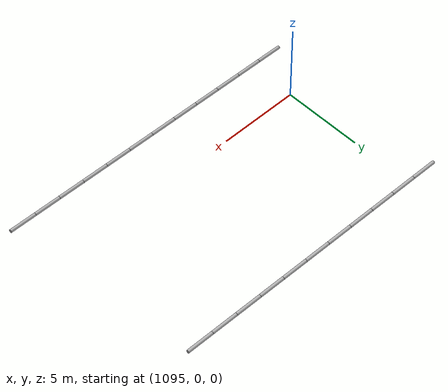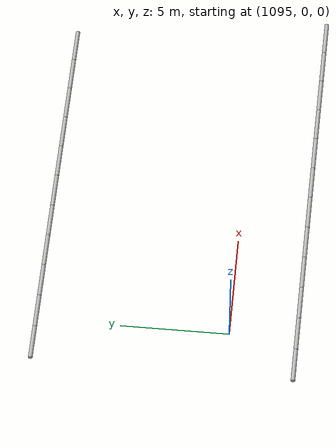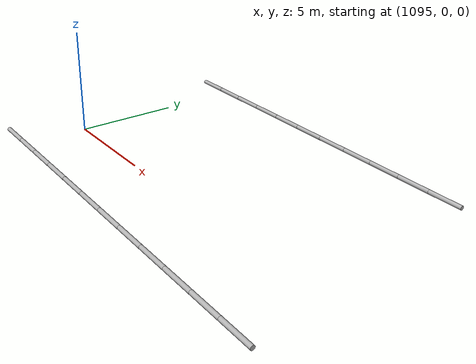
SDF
<sdf version="1.6">
 <model name="line_model">
  <static>true</static>
  <link name="cylinder_(1092.8420412028067, -3.0743504832168647)_(1094.4626807652935, -3.0887509597818683)">
   <pose>1093.6523609840501 -3.0815507214993665 0.05 0 1.5707963267948966 -0.008885441228680874</pose>
   <visual name="visual">
    <geometry><cylinder><radius>0.1</radius><length>1.6207035402017762</length></cylinder></geometry>
   </visual>
   <collision name="collision">
    <geometry><cylinder><radius>0.1</radius><length>1.6207035402017762</length></cylinder></geometry>
   </collision>
  </link>
  <link name="cylinder_(1094.4626807652935, -3.0887509597818683)_(1096.0874518585697, -3.103666067868259)">
   <pose>1095.2750663119316 -3.0962085138250637 0.05 0 1.5707963267948966 -0.00917956332944326</pose>
   <visual name="visual">
    <geometry><cylinder><radius>0.1</radius><length>1.624839550846529</length></cylinder></geometry>
   </visual>
   <collision name="collision">
    <geometry><cylinder><radius>0.1</radius><length>1.624839550846529</length></cylinder></geometry>
   </collision>
  </link>
  <link name="cylinder_(1096.0874518585697, -3.103666067868259)_(1097.7164044885553, -3.1190945265712458)">
   <pose>1096.9019281735625 -3.1113802972197524 0.05 0 1.5707963267948966 -0.009471114810184589</pose>
   <visual name="visual">
    <geometry><cylinder><radius>0.1</radius><length>1.6290256928836515</length></cylinder></geometry>
   </visual>
   <collision name="collision">
    <geometry><cylinder><radius>0.1</radius><length>1.6290256928836515</length></cylinder></geometry>
   </collision>
  </link>
  <link name="cylinder_(1097.7164044885553, -3.1190945265712458)_(1099.3495886578717, -3.1350350548857193)">
   <pose>1098.5329965732135 -3.1270647907284825 0.05 0 1.5707963267948966 -0.009760088573836815</pose>
   <visual name="visual">
    <geometry><cylinder><radius>0.1</radius><length>1.6332619604179968</length></cylinder></geometry>
   </visual>
   <collision name="collision">
    <geometry><cylinder><radius>0.1</radius><length>1.6332619604179968</length></cylinder></geometry>
   </collision>
  </link>
  <link name="cylinder_(1099.3495886578717, -3.1350350548857193)_(1100.987054365873, -3.1514863717007264)">
   <pose>1100.1683215118724 -3.143260713293223 0.05 0 1.5707963267948966 -0.01004647806932424</pose>
   <visual name="visual">
    <geometry><cylinder><radius>0.1</radius><length>1.637548347593278</length></cylinder></geometry>
   </visual>
   <collision name="collision">
    <geometry><cylinder><radius>0.1</radius><length>1.637548347593278</length></cylinder></geometry>
   </collision>
  </link>
  <link name="cylinder_(1100.987054365873, -3.1514863717007264)_(1102.628851608677, -3.1684471957941187)">
   <pose>1101.807952987275 -3.1599667837474223 0.05 0 1.5707963267948966 -0.010330277286525406</pose>
   <visual name="visual">
    <geometry><cylinder><radius>0.1</radius><length>1.641884848590948</length></cylinder></geometry>
   </visual>
   <collision name="collision">
    <geometry><cylinder><radius>0.1</radius><length>1.641884848590948</length></cylinder></geometry>
   </collision>
  </link>
  <link name="cylinder_(1102.628851608677, -3.1684471957941187)_(1104.2750303791952, -3.1859162458274097)">
   <pose>1103.4519409939362 -3.177181720810764 0.05 0 1.5707963267948966 -0.01061148075106893</pose>
   <visual name="visual">
    <geometry><cylinder><radius>0.1</radius><length>1.6462714576320172</length></cylinder></geometry>
   </visual>
   <collision name="collision">
    <geometry><cylinder><radius>0.1</radius><length>1.6462714576320172</length></cylinder></geometry>
   </collision>
  </link>
  <link name="cylinder_(1104.2750303791952, -3.1859162458274097)_(1105.9256406671684, -3.203892240340794)">
   <pose>1105.100335523182 -3.194904243084102 0.05 0 1.5707963267948966 -0.010890083518921807</pose>
   <visual name="visual">
    <geometry><cylinder><radius>0.1</radius><length>1.6507081689813585</length></cylinder></geometry>
   </visual>
   <collision name="collision">
    <geometry><cylinder><radius>0.1</radius><length>1.6507081689813585</length></cylinder></geometry>
   </collision>
  </link>
  <link name="cylinder_(1105.9256406671684, -3.203892240340794)_(1107.5807324591988, -3.2223738977483656)">
   <pose>1106.7531865631836 -3.21313306904458 0.05 0 1.5707963267948966 -0.011166081170882816</pose>
   <visual name="visual">
    <geometry><cylinder><radius>0.1</radius><length>1.6551949769458598</length></cylinder></geometry>
   </visual>
   <collision name="collision">
    <geometry><cylinder><radius>0.1</radius><length>1.6551949769458598</length></cylinder></geometry>
   </collision>
  </link>
  <link name="cylinder_(1107.5807324591988, -3.2223738977483656)_(1109.240355738785, -3.241359936333529)">
   <pose>1108.410544098992 -3.2318669170409473 0.05 0 1.5707963267948966 -0.011439469806888475</pose>
   <visual name="visual">
    <geometry><cylinder><radius>0.1</radius><length>1.6597318758780173</length></cylinder></geometry>
   </visual>
   <collision name="collision">
    <geometry><cylinder><radius>0.1</radius><length>1.6597318758780173</length></cylinder></geometry>
   </collision>
  </link>
  <link name="cylinder_(1109.240355738785, -3.241359936333529)_(1110.9045604863584, -3.2608490742445895)">
   <pose>1110.0724581125717 -3.2511045052890593 0.05 0 1.5707963267948966 -0.011710246040177771</pose>
   <visual name="visual">
    <geometry><cylinder><radius>0.1</radius><length>1.6643188601774697</length></cylinder></geometry>
   </visual>
   <collision name="collision">
    <geometry><cylinder><radius>0.1</radius><length>1.6643188601774697</length></cylinder></geometry>
   </collision>
  </link>
  <link name="cylinder_(1110.9045604863584, -3.2608490742445895)_(1112.5733966793184, -3.280840029490533)">
   <pose>1111.7389785828384 -3.2708445518675613 0.05 0 1.5707963267948966 -0.011978406991342491</pose>
   <visual name="visual">
    <geometry><cylinder><radius>0.1</radius><length>1.6689559242906973</length></cylinder></geometry>
   </visual>
   <collision name="collision">
    <geometry><cylinder><radius>0.1</radius><length>1.6689559242906973</length></cylinder></geometry>
   </collision>
  </link>
  <link name="cylinder_(1092.9468894220772, 8.925191460162301)_(1094.5710737027798, 8.91075948736151)">
   <pose>1093.7589815624285 8.917975473761906 0.05 0 1.5707963267948966 -0.008885440626266743</pose>
   <visual name="visual">
    <geometry><cylinder><radius>0.1</radius><length>1.6242483983431608</length></cylinder></geometry>
   </visual>
   <collision name="collision">
    <geometry><cylinder><radius>0.1</radius><length>1.6242483983431608</length></cylinder></geometry>
   </collision>
  </link>
  <link name="cylinder_(1094.5710737027798, 8.91075948736151)_(1096.1993587036995, 8.895812123203763)">
   <pose>1095.3852162032397 8.903285805282636 0.05 0 1.5707963267948966 -0.009179562732278376</pose>
   <visual name="visual">
    <geometry><cylinder><radius>0.1</radius><length>1.6283536065349673</length></cylinder></geometry>
   </visual>
   <collision name="collision">
    <geometry><cylinder><radius>0.1</radius><length>1.6283536065349673</length></cylinder></geometry>
   </collision>
  </link>
  <link name="cylinder_(1096.1993587036995, 8.895812123203763)_(1097.8317943422444, 8.880350676506504)">
   <pose>1097.015576522972 8.888081399855134 0.05 0 1.5707963267948966 -0.009471114218437953</pose>
   <visual name="visual">
    <geometry><cylinder><radius>0.1</radius><length>1.6325088576560003</length></cylinder></geometry>
   </visual>
   <collision name="collision">
    <geometry><cylinder><radius>0.1</radius><length>1.6325088576560003</length></cylinder></geometry>
   </collision>
  </link>
  <link name="cylinder_(1097.8317943422444, 8.880350676506504)_(1099.4684305391197, 8.864376455986864)">
   <pose>1098.650112440682 8.872363566246683 0.05 0 1.5707963267948966 -0.009760087987666923</pose>
   <visual name="visual">
    <geometry><cylinder><radius>0.1</radius><length>1.6367141523930517</length></cylinder></geometry>
   </visual>
   <collision name="collision">
    <geometry><cylinder><radius>0.1</radius><length>1.6367141523930517</length></cylinder></geometry>
   </collision>
  </link>
  <link name="cylinder_(1099.4684305391197, 8.864376455986864)_(1101.1093172182996, 8.847890770256125)">
   <pose>1100.2888738787096 8.856133613121495 0.05 0 1.5707963267948966 -0.010046477488884152</pose>
   <visual name="visual">
    <geometry><cylinder><radius>0.1</radius><length>1.6409694914116817</length></cylinder></geometry>
   </visual>
   <collision name="collision">
    <geometry><cylinder><radius>0.1</radius><length>1.6409694914116817</length></cylinder></geometry>
   </collision>
  </link>
  <link name="cylinder_(1101.1093172182996, 8.847890770256125)_(1102.754504306995, 8.830894927814386)">
   <pose>1101.9319107626472 8.839392849035256 0.05 0 1.5707963267948966 -0.010330276711959421</pose>
   <visual name="visual">
    <geometry><cylinder><radius>0.1</radius><length>1.6452748753537316</length></cylinder></geometry>
   </visual>
   <collision name="collision">
    <geometry><cylinder><radius>0.1</radius><length>1.6452748753537316</length></cylinder></geometry>
   </collision>
  </link>
  <link name="cylinder_(1102.754504306995, 8.830894927814386)_(1104.4040417356211, 8.813390237045386)">
   <pose>1103.579273021308 8.822142582429887 0.05 0 1.5707963267948966 -0.01061148018251504</pose>
   <visual name="visual">
    <geometry><cylinder><radius>0.1</radius><length>1.649630304837333</length></cylinder></geometry>
   </visual>
   <collision name="collision">
    <geometry><cylinder><radius>0.1</radius><length>1.649630304837333</length></cylinder></geometry>
   </collision>
  </link>
  <link name="cylinder_(1104.4040417356211, 8.813390237045386)_(1106.0579794377663, 8.795378006211564)">
   <pose>1105.2310105866936 8.804384121628475 0.05 0 1.5707963267948966 -0.010890082956504014</pose>
   <visual name="visual">
    <geometry><cylinder><radius>0.1</radius><length>1.6540357804584842</length></cylinder></geometry>
   </visual>
   <collision name="collision">
    <geometry><cylinder><radius>0.1</radius><length>1.6540357804584842</length></cylinder></geometry>
   </collision>
  </link>
  <link name="cylinder_(1106.0579794377663, 8.795378006211564)_(1107.716367350156, 8.776859543449246)">
   <pose>1106.8871733939611 8.786118774830406 0.05 0 1.5707963267948966 -0.011166080614729965</pose>
   <visual name="visual">
    <geometry><cylinder><radius>0.1</radius><length>1.658491302787844</length></cylinder></geometry>
   </visual>
   <collision name="collision">
    <geometry><cylinder><radius>0.1</radius><length>1.658491302787844</length></cylinder></geometry>
   </collision>
  </link>
  <link name="cylinder_(1107.716367350156, 8.776859543449246)_(1109.3792554126187, 8.757836156764082)">
   <pose>1108.5478113813874 8.767347850106663 0.05 0 1.5707963267948966 -0.01143946925711075</pose>
   <visual name="visual">
    <geometry><cylinder><radius>0.1</radius><length>1.6629968723729616</length></cylinder></geometry>
   </visual>
   <collision name="collision">
    <geometry><cylinder><radius>0.1</radius><length>1.6629968723729616</length></cylinder></geometry>
   </collision>
  </link>
  <link name="cylinder_(1109.3792554126187, 8.757836156764082)_(1111.0466935680518, 8.738309154026606)">
   <pose>1110.2129744903352 8.748072655395344 0.05 0 1.5707963267948966 -0.011710245496888491</pose>
   <visual name="visual">
    <geometry><cylinder><radius>0.1</radius><length>1.6675524897375404</length></cylinder></geometry>
   </visual>
   <collision name="collision">
    <geometry><cylinder><radius>0.1</radius><length>1.6675524897375404</length></cylinder></geometry>
   </collision>
  </link>
 </model>
</sdf>
